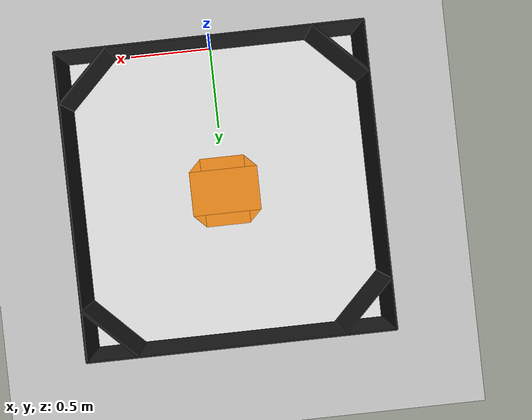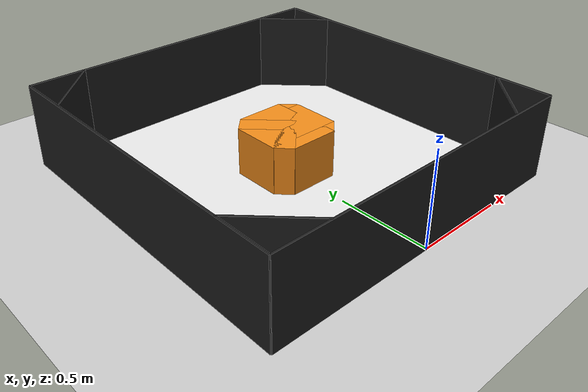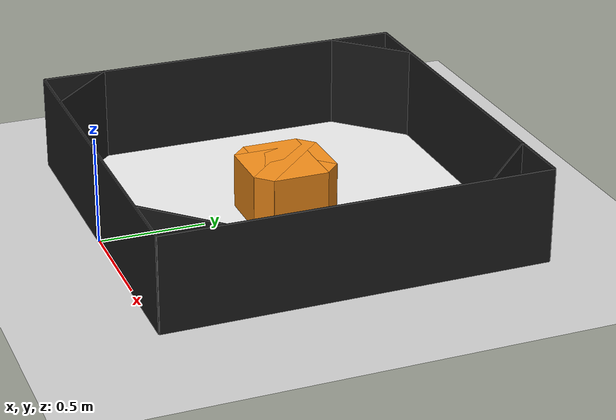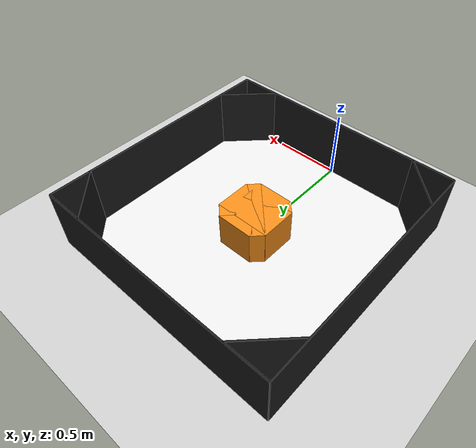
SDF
<sdf version='1.4'>
  <world name='default'>
    <!-- A global light source -->
    <include>
      <uri>model://sun</uri>
    </include>

    <!-- A ground plane -->
    <include>
      <uri>model://ground_plane</uri>
    </include>

    <physics type="ode">
      <real_time_update_rate>1000.0</real_time_update_rate>
      <max_step_size>0.001</max_step_size>
      <real_time_factor>1</real_time_factor>
      <ode>
        <solver>
          <type>quick</type>
          <iters>150</iters>
          <precon_iters>0</precon_iters>
          <sor>1.400000</sor>
          <use_dynamic_moi_rescaling>1</use_dynamic_moi_rescaling>
        </solver>
        <constraints>
          <cfm>0.00001</cfm>
          <erp>0.2</erp>
          <contact_max_correcting_vel>2000.000000</contact_max_correcting_vel>
          <contact_surface_layer>0.01000</contact_surface_layer>
        </constraints>
      </ode>
    </physics>

    <model name='wall'>
      <pose frame=''>0 0 0.225 0 -0 0</pose>
      <link name='wall'>
        <collision name='wall_1'>
          <pose>0.0 0.0 0.0 0 0 0</pose>
          <geometry>
            <box>
              <size>1.8 0.01 0.45</size>
            </box>
          </geometry>
          <max_contacts>10</max_contacts>
          <surface>
            <bounce/>
            <friction>
              <ode/>
            </friction>
            <contact>
              <ode/>
            </contact>
          </surface>
        </collision>

        <visual name='wall_1'>
          <pose>0.0 0.0 0.0 0 0 0</pose>
          <geometry>
            <box>
              <size>1.8 0.01 0.45</size>
            </box>
          </geometry>
          <material>
            <script>
              <uri>file://media/materials/scripts/gazebo.material</uri>
              <name>Gazebo/Black</name>
            </script>
          </material>
        </visual>

        <collision name='wall_2'>
          <pose>0.0 1.8 0.0 0 0 0</pose>
          <geometry>
            <box>
              <size>1.8 0.01 0.45</size>
            </box>
          </geometry>
          <max_contacts>10</max_contacts>
          <surface>
            <bounce/>
            <friction>
              <ode/>
            </friction>
            <contact>
              <ode/>
            </contact>
          </surface>
        </collision>

        <visual name='wall_2'>
          <pose>0.0 1.8 0.0 0 0 0</pose>
          <geometry>
            <box>
              <size>1.8 0.01 0.45</size>
            </box>
          </geometry>
          <material>
            <script>
              <uri>file://media/materials/scripts/gazebo.material</uri>
              <name>Gazebo/Black</name>
            </script>
          </material>
        </visual>

        <collision name='wall_3'>
          <pose>0.9 0.9 0.0 0 0 0</pose>
          <geometry>
            <box>
              <size>0.01 1.8 0.45</size>
            </box>
          </geometry>
          <max_contacts>10</max_contacts>
          <surface>
            <bounce/>
            <friction>
              <ode/>
            </friction>
            <contact>
              <ode/>
            </contact>
          </surface>
        </collision>

        <visual name='wall_3'>
          <pose>0.9 0.9 0.0 0 0 0</pose>
          <geometry>
            <box>
              <size>0.01 1.8 0.45</size>
            </box>
          </geometry>
          <material>
            <script>
              <uri>file://media/materials/scripts/gazebo.material</uri>
              <name>Gazebo/Black</name>
            </script>
          </material>
        </visual>

        <collision name='wall_4'>
          <pose>-0.9 0.9 0.0 0 0 0</pose>
          <geometry>
            <box>
              <size>0.01 1.8 0.45</size>
            </box>
          </geometry>
          <max_contacts>10</max_contacts>
          <surface>
            <bounce/>
            <friction>
              <ode/>
            </friction>
            <contact>
              <ode/>
            </contact>
          </surface>
        </collision>

        <visual name='wall_4'>
          <pose>-0.9 0.9 0.0 0 0 0</pose>
          <geometry>
            <box>
              <size>0.01 1.8 0.45</size>
            </box>
          </geometry>
          <material>
            <script>
              <uri>file://media/materials/scripts/gazebo.material</uri>
              <name>Gazebo/Black</name>
            </script>
          </material>
        </visual>

      </link>
      <static>1</static>
    </model>

    <!-- Largeobstacle -->
    <model name='obstacle'>
      <pose frame=''>0 0 0.13 0 -0 0</pose>
      <link name='obstacle'>
        <collision name='obstacle_1'>
          <pose>0.0 0.9 0 0 0 0</pose>
          <geometry>
            <box>
              <size>0.41 0.265 0.26</size>
            </box>
          </geometry>
          <max_contacts>10</max_contacts>
          <surface>
            <bounce/>
            <friction>
              <ode/>
            </friction>
            <contact>
              <ode/>
            </contact>
          </surface>
        </collision>

        <visual name='obstacle_1'>
          <pose>0.0 0.9 0 0 0 0</pose>
          <geometry>
            <box>
              <size>0.41 0.265 0.26</size>
            </box>
          </geometry>
          <material>
            <script>
              <uri>file://media/materials/scripts/gazebo.material</uri>
              <name>Gazebo/Orange</name>
            </script>
          </material>
        </visual>

        <collision name='obstacle_2'>
          <pose>0.0 0.9 0 0 0 0</pose>
          <geometry>
            <box>
              <size>0.265 0.41 0.26</size>
            </box>
          </geometry>
          <max_contacts>10</max_contacts>
          <surface>
            <bounce/>
            <friction>
              <ode/>
            </friction>
            <contact>
              <ode/>
            </contact>
          </surface>
        </collision>

        <visual name='obstacle_2'>
          <pose>0.0 0.9 0 0 0 0</pose>
          <geometry>
            <box>
              <size>0.265 0.41 0.26</size>
            </box>
          </geometry>
          <material>
            <script>
              <uri>file://media/materials/scripts/gazebo.material</uri>
              <name>Gazebo/Orange</name>
            </script>
          </material>
        </visual>

        <collision name='obstacle_3'>
          <pose>0.0 0.9 0 0 0 -0.785</pose>
          <geometry>
            <box>
              <size>0.475 0.1025 0.26</size>
            </box>
          </geometry>
          <max_contacts>10</max_contacts>
          <surface>
            <bounce/>
            <friction>
              <ode/>
            </friction>
            <contact>
              <ode/>
            </contact>
          </surface>
        </collision>

        <visual name='obstacle_3'>
          <pose>0.0 0.9 0 0 0 -0.785</pose>
          <geometry>
            <box>
              <size>0.475 0.1025 0.26</size>
            </box>
          </geometry>
          <material>
            <script>
              <uri>file://media/materials/scripts/gazebo.material</uri>
              <name>Gazebo/Orange</name>
            </script>
          </material>
        </visual>

        <collision name='obstacle_4'>
          <pose>0.0 0.9 0 0 0 0.785</pose>
          <geometry>
            <box>
              <size>0.475 0.1025 0.26</size>
            </box>
          </geometry>
          <max_contacts>10</max_contacts>
          <surface>
            <bounce/>
            <friction>
              <ode/>
            </friction>
            <contact>
              <ode/>
            </contact>
          </surface>
        </collision>

        <visual name='obstacle_4'>
          <pose>0.0 0.9 0 0 0 0.785</pose>
          <geometry>
            <box>
              <size>0.475 0.1025 0.26</size>
            </box>
          </geometry>
          <material>
            <script>
              <uri>file://media/materials/scripts/gazebo.material</uri>
              <name>Gazebo/Orange</name>
            </script>
          </material>
        </visual>
      </link>
      <static>1</static>
    </model>

    <model name='addwall'>
      <pose frame=''>0 0 0.225 0 -0 0</pose>
      <link name='addwall'>
        <collision name='addwall_1'>
          <pose>0.75 1.65 0.0 0 0 -0.785</pose>
          <geometry>
            <box>
              <size>0.424 0.01 0.45</size>
            </box>
          </geometry>
          <max_contacts>10</max_contacts>
          <surface>
            <bounce/>
            <friction>
              <ode/>
            </friction>
            <contact>
              <ode/>
            </contact>
          </surface>
        </collision>

        <visual name='addwall_1'>
          <pose>0.75 1.65 0.0 0 0 -0.785</pose>
          <geometry>
            <box>
              <size>0.424 0.01 0.45</size>
            </box>
          </geometry>
          <material>
            <script>
              <uri>file://media/materials/scripts/gazebo.material</uri>
              <name>Gazebo/Black</name>
            </script>
          </material>
        </visual>

        <collision name='addwall_2'>
          <pose>-0.75 0.15 0.0 0 0 -0.785</pose>
          <geometry>
            <box>
              <size>0.424 0.01 0.45</size>
            </box>
          </geometry>
          <max_contacts>10</max_contacts>
          <surface>
            <bounce/>
            <friction>
              <ode/>
            </friction>
            <contact>
              <ode/>
            </contact>
          </surface>
        </collision>

        <visual name='addwall_2'>
          <pose>-0.75 0.15 0.0 0 0 -0.785</pose>
          <geometry>
            <box>
              <size>0.424 0.01 0.45</size>
            </box>
          </geometry>
          <material>
            <script>
              <uri>file://media/materials/scripts/gazebo.material</uri>
              <name>Gazebo/Black</name>
            </script>
          </material>
        </visual>

        <collision name='addwall_3'>
          <pose>0.75 0.15 0.0 0 0 0.785</pose>
          <geometry>
            <box>
              <size>0.424 0.01 0.45</size>
            </box>
          </geometry>
          <max_contacts>10</max_contacts>
          <surface>
            <bounce/>
            <friction>
              <ode/>
            </friction>
            <contact>
              <ode/>
            </contact>
          </surface>
        </collision>

        <visual name='addwall_3'>
          <pose>0.75 0.15 0.0 0 0 0.785</pose>
          <geometry>
            <box>
              <size>0.424 0.01 0.45</size>
            </box>
          </geometry>
          <material>
            <script>
              <uri>file://media/materials/scripts/gazebo.material</uri>
              <name>Gazebo/Black</name>
            </script>
          </material>
        </visual>

        <collision name='addwall_4'>
          <pose>-0.75 1.65 0.0 0 0 0.785</pose>
          <geometry>
            <box>
              <size>0.424 0.01 0.45</size>
            </box>
          </geometry>
          <max_contacts>10</max_contacts>
          <surface>
            <bounce/>
            <friction>
              <ode/>
            </friction>
            <contact>
              <ode/>
            </contact>
          </surface>
        </collision>

        <visual name='addwall_4'>
          <pose>-0.75 1.65 0.0 0 0 0.785</pose>
          <geometry>
            <box>
              <size>0.424 0.01 0.45</size>
            </box>
          </geometry>
          <material>
            <script>
              <uri>file://media/materials/scripts/gazebo.material</uri>
              <name>Gazebo/Black</name>
            </script>
          </material>
        </visual>

      </link>
      <static>1</static>
    </model>

    <model name='sheet'>
      <pose frame=''>0 0.9 -0.049 0 -0 0</pose>
      <link name='sheet'>
        <collision name='sheet'>
          <pose>0.0 0.0 0.0 0 0 0</pose>
          <geometry>
            <box>
              <size>1.8 1.8 0.1</size>
            </box>
          </geometry>
          <max_contacts>10</max_contacts>
          <surface>
            <bounce/>
            <friction>
              <ode/>
            </friction>
            <contact>
              <ode/>
            </contact>
          </surface>
        </collision>

        <visual name='sheet'>
          <pose>0.0 0.0 0.0 0 0 0</pose>
          <geometry>
            <box>
              <size>1.8 1.8 0.1</size>
            </box>
          </geometry>
          <material>
            <script>
              <uri>file://media/materials/scripts/gazebo.material</uri>
              <name>Gazebo/White</name>
            </script>
          </material>
        </visual>
       </link>
       <static>1</static>
    </model>

    <scene>
      <ambient>0.6 0.6 0.6 1.0</ambient>
      <background>0 0 0 1.0</background>
      <shadows>false</shadows>
    </scene>

    <gui fullscreen='0'>
      <camera name='user_camera'>
        <pose>0.0 0.0 17.0 0 1.5708 0</pose>
        <view_controller>orbit</view_controller>
      </camera>
    </gui>
  </world>
</sdf>
